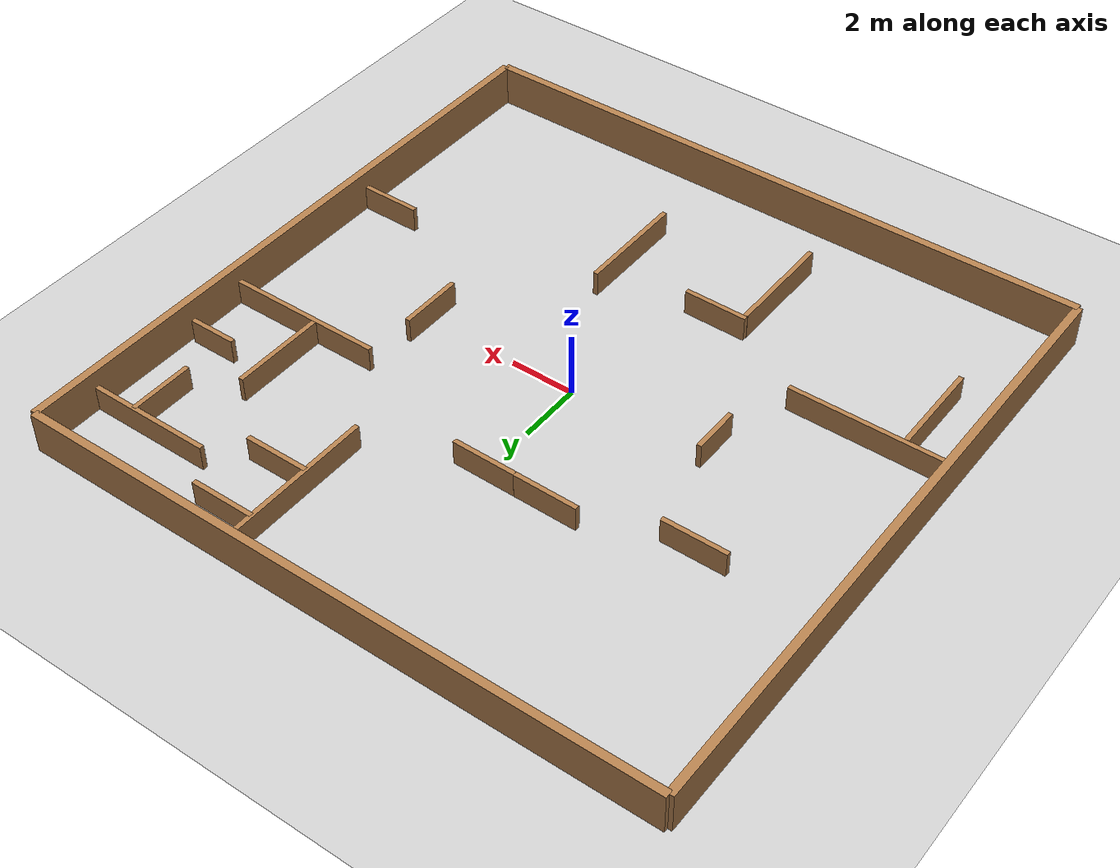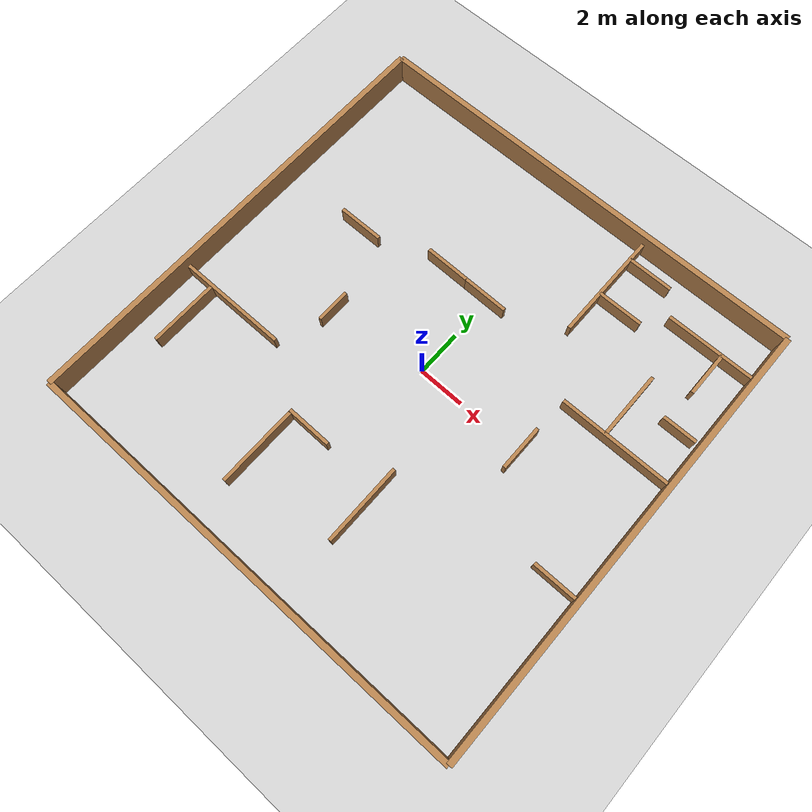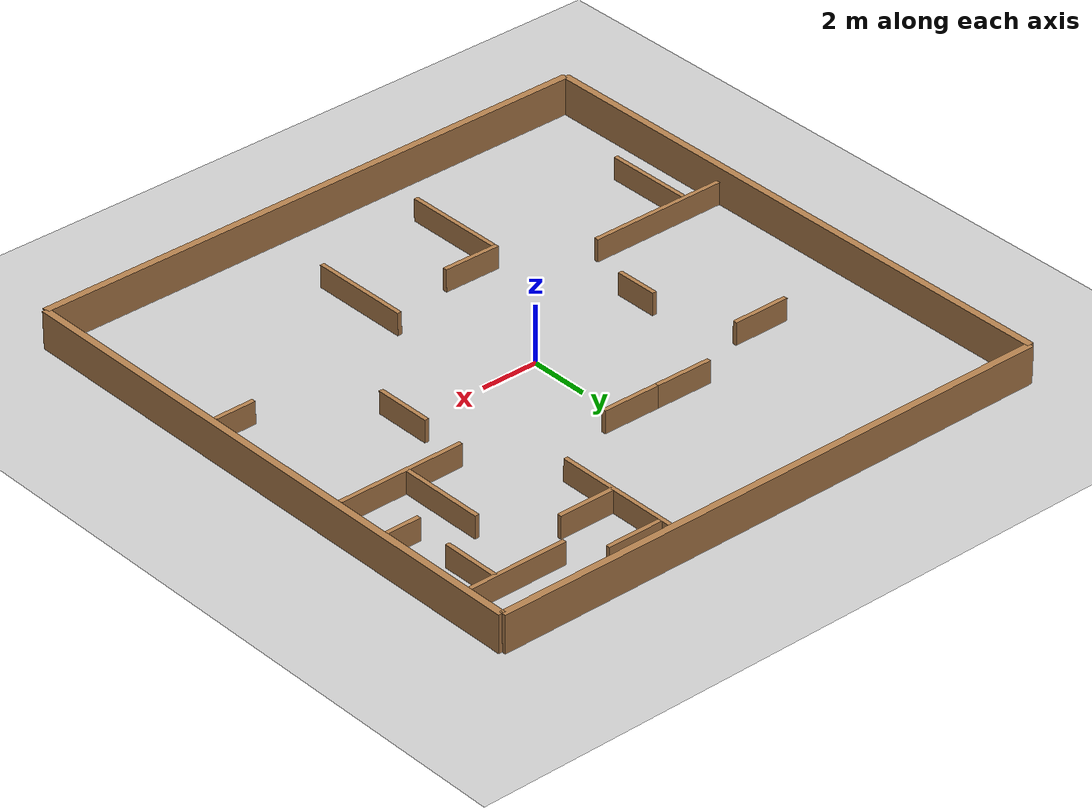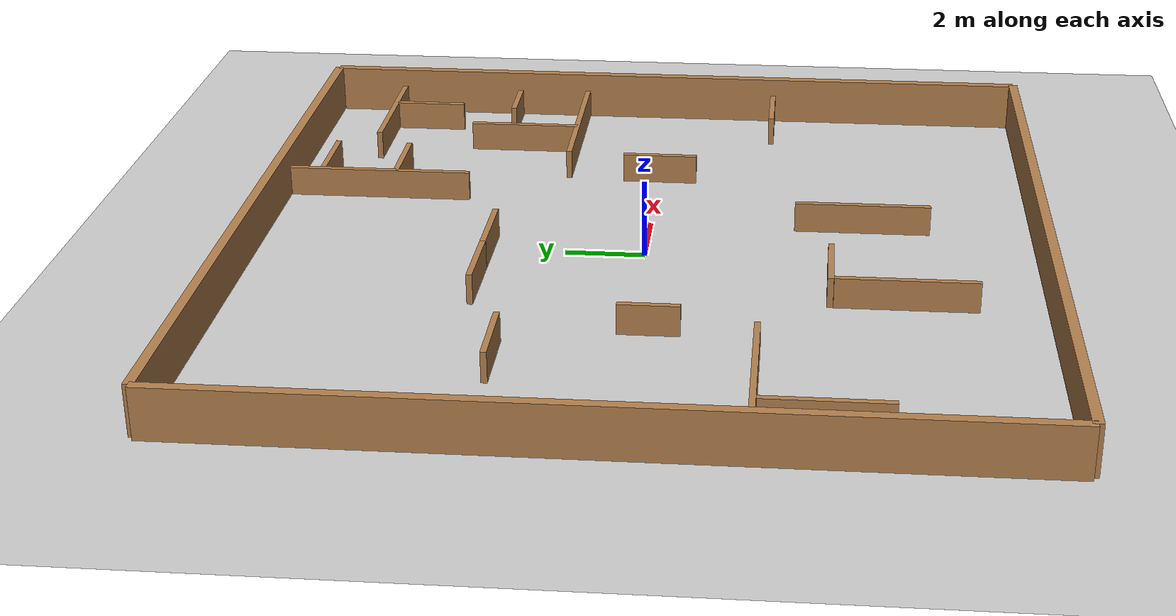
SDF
<sdf version="1.7">
 <world name="default">
  <plugin name="gazebo_ros_state" filename="libgazebo_ros_state.so">
   <ros><namespace>/test</namespace><argument>model_states:=model_states_demo</argument></ros>
   <update_rate>1.0</update_rate>
  </plugin>
  <model name="ground_plane">
   <static>1</static>
   <link name="link">
    <collision name="collision">
     <geometry><plane><normal>0 0 1</normal><size>100 100</size></plane></geometry>
     <surface>
      <contact><collide_bitmask>65535</collide_bitmask></contact>
      <friction><ode><mu>100</mu><mu2>50</mu2></ode></friction>
     </surface>
    </collision>
    <visual name="visual">
     <cast_shadows>0</cast_shadows>
     <geometry><plane><normal>0 0 1</normal><size>100 100</size></plane></geometry>
     <material>
      <script><uri>file://media/materials/scripts/gazebo.material</uri><name>Gazebo/Grey</name></script>
     </material>
    </visual>
   </link>
  </model>
  <light name="sun" type="directional">
   <pose>0 0 10 0 -0 0</pose>
   <diffuse>0.8 0.8 0.8 1</diffuse>
   <specular>0.2 0.2 0.2 1</specular>
   <attenuation>
    <range>1000</range>
    <constant>0.9</constant>
    <linear>0.01</linear>
    <quadratic>0.001</quadratic>
   </attenuation>
   <direction>-0.5 0.1 -0.9</direction>
   <spot><inner_angle>0</inner_angle><outer_angle>0</outer_angle><falloff>0</falloff></spot>
  </light>
  <scene><shadows>0</shadows><ambient>0.4 0.4 0.4 1</ambient><background>0.7 0.7 0.7 1</background></scene>
  <physics type="ode">
   <real_time_update_rate>1000</real_time_update_rate>
   <max_step_size>0.001</max_step_size>
   <real_time_factor>1</real_time_factor>
   <ode>
    <solver>
     <type>quick</type>
     <iters>150</iters>
     <precon_iters>0</precon_iters>
     <sor>1.4</sor>
     <use_dynamic_moi_rescaling>1</use_dynamic_moi_rescaling>
    </solver>
    <constraints>
     <cfm>1e-05</cfm>
     <erp>0.2</erp>
     <contact_max_correcting_vel>2000</contact_max_correcting_vel>
     <contact_surface_layer>0.01</contact_surface_layer>
    </constraints>
   </ode>
  </physics>
  <gravity>0 0 -9.8</gravity>
  <magnetic_field>6e-06 2.3e-05 -4.2e-05</magnetic_field>
  <atmosphere type="adiabatic"/>
  <spherical_coordinates>
   <surface_model>EARTH_WGS84</surface_model>
   <latitude_deg>0</latitude_deg>
   <longitude_deg>0</longitude_deg>
   <elevation>0</elevation>
   <heading_deg>0</heading_deg>
  </spherical_coordinates>
  <model name="room_square">
   <static>1</static>
   <link name="Wall_1">
    <collision name="Wall_1_Collision">
     <geometry><box><size>20 0.25 2</size></box></geometry>
     <pose>0 0 0.25 0 -0 0</pose>
    </collision>
    <visual name="Wall_1_Visual">
     <pose>0 0 0.25 0 -0 0</pose>
     <geometry><box><size>20 0.25 2</size></box></geometry>
     <material>
      <script><uri>file://media/materials/scripts/gazebo.material</uri><name>Gazebo/Wood</name></script>
      <ambient>1 1 1 1</ambient>
     </material>
    </visual>
    <pose>-10 0 0 0 -0 1.5708</pose>
   </link>
   <link name="Wall_2">
    <collision name="Wall_2_Collision">
     <geometry><box><size>20 0.25 2</size></box></geometry>
     <pose>0 0 0.25 0 -0 0</pose>
    </collision>
    <visual name="Wall_2_Visual">
     <pose>0 0 0.25 0 -0 0</pose>
     <geometry><box><size>20 0.25 2</size></box></geometry>
     <material>
      <script><uri>file://media/materials/scripts/gazebo.material</uri><name>Gazebo/Wood</name></script>
      <ambient>1 1 1 1</ambient>
     </material>
    </visual>
    <pose>0 10 0 0 -0 0</pose>
   </link>
   <link name="Wall_3">
    <collision name="Wall_3_Collision">
     <geometry><box><size>20 0.25 2</size></box></geometry>
     <pose>0 0 0.25 0 -0 0</pose>
    </collision>
    <visual name="Wall_3_Visual">
     <pose>0 0 0.25 0 -0 0</pose>
     <geometry><box><size>20 0.25 2</size></box></geometry>
     <material>
      <script><uri>file://media/materials/scripts/gazebo.material</uri><name>Gazebo/Wood</name></script>
      <ambient>1 1 1 1</ambient>
     </material>
    </visual>
    <pose>10 0 0 0 0 -1.5708</pose>
   </link>
   <link name="Wall_4">
    <collision name="Wall_4_Collision">
     <geometry><box><size>20 0.25 2</size></box></geometry>
     <pose>0 0 0.25 0 -0 0</pose>
    </collision>
    <visual name="Wall_4_Visual">
     <pose>0 0 0.25 0 -0 0</pose>
     <geometry><box><size>20 0.25 2</size></box></geometry>
     <material>
      <script><uri>file://media/materials/scripts/gazebo.material</uri><name>Gazebo/Wood</name></script>
      <ambient>1 1 1 1</ambient>
     </material>
    </visual>
    <pose>0 -10 0 0 -0 3.14159</pose>
   </link>
   <static>1</static>
  </model>
  <model name="inner_wall_1_1">
   <static>1</static>
   <link name="inner_wall_1_1">
    <collision name="inner_wall_1_1_collision">
     <geometry><box><size>5 0.15 1</size></box></geometry>
     <pose>0 0 0.25 0 -0 0</pose>
    </collision>
    <visual name="inner_wall_1_1_visual">
     <pose>0 0 0.25 0 -0 0</pose>
     <geometry><box><size>5 0.15 1</size></box></geometry>
     <material>
      <script><uri>file://media/materials/scripts/gazebo.material</uri><name>Gazebo/Wood</name></script>
      <ambient>1 1 1 1</ambient>
     </material>
    </visual>
    <pose>-7.5 -3 0 0 -0 0</pose>
   </link>
  </model>
  <model name="inner_wall_right_down_h">
   <pose>-0.54073 -0.07967 0 0 -0 0</pose>
   <static>1</static>
   <link name="inner_wall_right_down_h">
    <collision name="inner_wall_right_down_h_collision">
     <geometry><box><size>3 0.15 1</size></box></geometry>
     <pose>0 0 0.25 0 -0 0</pose>
    </collision>
    <visual name="inner_wall_right_down_h_visual">
     <pose>0 0 0.25 0 -0 0</pose>
     <geometry><box><size>3 0.15 1</size></box></geometry>
     <material>
      <script><uri>file://media/materials/scripts/gazebo.material</uri><name>Gazebo/Wood</name></script>
      <ambient>1 1 1 1</ambient>
     </material>
    </visual>
    <pose>-8 -4.5 0 0 0 -1.5708</pose>
   </link>
  </model>
  <model name="inner_wall_1_2">
   <static>1</static>
   <link name="inner_wall_1_2">
    <collision name="inner_wall_1_2_collision">
     <geometry><box><size>3.5 0.15 1</size></box></geometry>
     <pose>0 0 0.25 0 -0 0</pose>
    </collision>
    <visual name="inner_wall_1_2_visual">
     <pose>0 0 0.25 0 -0 0</pose>
     <geometry><box><size>3.5 0.15 1</size></box></geometry>
     <material>
      <script><uri>file://media/materials/scripts/gazebo.material</uri><name>Gazebo/Wood</name></script>
      <ambient>1 1 1 1</ambient>
     </material>
    </visual>
    <pose>-2.5 -6.5 0 0 0 -1.5708</pose>
   </link>
  </model>
  <model name="inner_wall_9">
   <static>1</static>
   <link name="inner_wall_9">
    <collision name="inner_wall_9_collision">
     <geometry><box><size>2 0.15 1</size></box></geometry>
     <pose>0 0 0.25 0 -0 0</pose>
    </collision>
    <visual name="inner_wall_9_visual">
     <pose>0 0 0.25 0 -0 0</pose>
     <geometry><box><size>2 0.15 1</size></box></geometry>
     <material>
      <script><uri>file://media/materials/scripts/gazebo.material</uri><name>Gazebo/Wood</name></script>
      <ambient>1 1 1 1</ambient>
     </material>
    </visual>
    <pose>9 -3 0 0 -0 0</pose>
   </link>
  </model>
  <model name="inner_wall_4">
   <static>1</static>
   <link name="inner_wall_4">
    <collision name="inner_wall_4_collision">
     <geometry><box><size>5 0.15 1</size></box></geometry>
     <pose>0 0 0.25 0 -0 0</pose>
    </collision>
    <visual name="inner_wall_4_visual">
     <pose>0 0 0.25 0 -0 0</pose>
     <geometry><box><size>5 0.15 1</size></box></geometry>
     <material>
      <script><uri>file://media/materials/scripts/gazebo.material</uri><name>Gazebo/Wood</name></script>
      <ambient>1 1 1 1</ambient>
     </material>
    </visual>
    <pose>3.3 7.5 0 0 0 -1.5708</pose>
   </link>
  </model>
  <model name="inner_wall_5">
   <static>1</static>
   <link name="inner_wall_5">
    <collision name="inner_wall_5_collision">
     <geometry><box><size>5 0.15 1</size></box></geometry>
     <pose>0 0 0.25 0 -0 0</pose>
    </collision>
    <visual name="inner_wall_5_visual">
     <pose>0 0 0.25 0 -0 0</pose>
     <geometry><box><size>5 0.15 1</size></box></geometry>
     <material>
      <script><uri>file://media/materials/scripts/gazebo.material</uri><name>Gazebo/Wood</name></script>
      <ambient>1 1 1 1</ambient>
     </material>
    </visual>
    <pose>7.5 2.5 0 0 -0 0</pose>
   </link>
  </model>
  <model name="inner_wall_6">
   <static>1</static>
   <link name="inner_wall_6">
    <collision name="inner_wall_6_collision">
     <geometry><box><size>1 0.15 1</size></box></geometry>
     <pose>0 0 0.25 0 -0 0</pose>
    </collision>
    <visual name="inner_wall_6_visual">
     <pose>0 0 0.25 0 -0 0</pose>
     <geometry><box><size>2 0.15 1</size></box></geometry>
     <material>
      <script><uri>file://media/materials/scripts/gazebo.material</uri><name>Gazebo/Wood</name></script>
      <ambient>1 1 1 1</ambient>
     </material>
    </visual>
    <pose>-6 3 0 0 -0 0</pose>
   </link>
  </model>
  <model name="inner_wall_7">
   <pose>3.97868 -3.01062 0 0 -0 0</pose>
   <static>1</static>
   <link name="inner_wall_7">
    <collision name="inner_wall_7_collision">
     <geometry><box><size>2 0.15 1</size></box></geometry>
     <pose>0 0 0.25 0 -0 0</pose>
    </collision>
    <visual name="inner_wall_7_visual">
     <pose>0 0 0.25 0 -0 0</pose>
     <geometry><box><size>2 0.15 1</size></box></geometry>
     <material>
      <script><uri>file://media/materials/scripts/gazebo.material</uri><name>Gazebo/Wood</name></script>
      <ambient>1 1 1 1</ambient>
     </material>
    </visual>
    <pose>0.978676 2.98938 0 0 0 -1.5708</pose>
   </link>
  </model>
  <model name="inner_wall_8">
   <pose>-0.31921 -0.45043 0 0 -0 0</pose>
   <static>1</static>
   <link name="inner_wall_8">
    <collision name="inner_wall_8_collision">
     <geometry><box><size>1.5 0.15 1</size></box></geometry>
     <pose>0 0 0.25 0 -0 0</pose>
    </collision>
    <visual name="inner_wall_8_visual">
     <pose>0 0 0.25 0 -0 0</pose>
     <geometry><box><size>1.5 0.15 1</size></box></geometry>
     <material>
      <script><uri>file://media/materials/scripts/gazebo.material</uri><name>Gazebo/Wood</name></script>
      <ambient>1 1 1 1</ambient>
     </material>
    </visual>
    <pose>-4 0 0 0 0 -1.5708</pose>
   </link>
  </model>
  <model name="inner_wall_11">
   <static>1</static>
   <link name="inner_wall_11">
    <collision name="inner_wall_11_collision">
     <geometry><box><size>3 0.15 1</size></box></geometry>
     <pose>0 0 0.25 0 -0 0</pose>
    </collision>
    <visual name="inner_wall_11_visual">
     <pose>0 0 0.25 0 -0 0</pose>
     <geometry><box><size>3 0.15 1</size></box></geometry>
     <material>
      <script><uri>file://media/materials/scripts/gazebo.material</uri><name>Gazebo/Wood</name></script>
      <ambient>1 1 1 1</ambient>
     </material>
    </visual>
    <pose>7 4 0 0 0 -1.5708</pose>
   </link>
  </model>
  <model name="inner_wall_12">
   <static>1</static>
   <link name="inner_wall_12">
    <collision name="inner_wall_12_collision">
     <geometry><box><size>4 0.15 1</size></box></geometry>
     <pose>0 0 0.25 0 -0 0</pose>
    </collision>
    <visual name="inner_wall_12_visual">
     <pose>0 0 0.25 0 -0 0</pose>
     <geometry><box><size>4 0.15 1</size></box></geometry>
     <material>
      <script><uri>file://media/materials/scripts/gazebo.material</uri><name>Gazebo/Wood</name></script>
      <ambient>1 1 1 1</ambient>
     </material>
    </visual>
    <pose>8 8 0 0 -0 0</pose>
   </link>
  </model>
  <model name="inner_wall_13">
   <static>1</static>
   <link name="inner_wall_13">
    <collision name="inner_wall_13_collision">
     <geometry><box><size>2 0.15 1</size></box></geometry>
     <pose>0 0 0.25 0 -0 0</pose>
    </collision>
    <visual name="inner_wall_13_visual">
     <pose>0 0 0.25 0 -0 0</pose>
     <geometry><box><size>2 0.15 1</size></box></geometry>
     <material>
      <script><uri>file://media/materials/scripts/gazebo.material</uri><name>Gazebo/Wood</name></script>
      <ambient>1 1 1 1</ambient>
     </material>
    </visual>
    <pose>4.3 9 0 0 -0 0</pose>
   </link>
  </model>
  <model name="inner_wall_14">
   <static>1</static>
   <link name="inner_wall_14">
    <collision name="inner_wall_14_collision">
     <geometry><box><size>1.5 0.15 1</size></box></geometry>
     <pose>0 0 0.25 0 -0 0</pose>
    </collision>
    <visual name="inner_wall_14_visual">
     <pose>0 0 0.25 0 -0 0</pose>
     <geometry><box><size>1.5 0.15 1</size></box></geometry>
     <material>
      <script><uri>file://media/materials/scripts/gazebo.material</uri><name>Gazebo/Wood</name></script>
      <ambient>1 1 1 1</ambient>
     </material>
    </visual>
    <pose>9 4.5 0 0 -0 0</pose>
   </link>
  </model>
  <model name="inner_wall_15">
   <static>1</static>
   <link name="inner_wall_15">
    <collision name="inner_wall_15_collision">
     <geometry><box><size>2 0.15 1</size></box></geometry>
     <pose>0 0 0.25 0 -0 0</pose>
    </collision>
    <visual name="inner_wall_15_visual">
     <pose>0 0 0.25 0 -0 0</pose>
     <geometry><box><size>2 0.15 1</size></box></geometry>
     <material>
      <script><uri>file://media/materials/scripts/gazebo.material</uri><name>Gazebo/Wood</name></script>
      <ambient>1 1 1 1</ambient>
     </material>
    </visual>
    <pose>8.5 7 0 0 0 -1.5708</pose>
   </link>
  </model>
  <model name="inner_wall_16">
   <static>1</static>
   <link name="inner_wall_16">
    <collision name="inner_wall_16_collision">
     <geometry><box><size>2 0.15 1</size></box></geometry>
     <pose>0 0 0.25 0 -0 0</pose>
    </collision>
    <visual name="inner_wall_16_visual">
     <pose>0 0 0.25 0 -0 0</pose>
     <geometry><box><size>2 0.15 1</size></box></geometry>
     <material>
      <script><uri>file://media/materials/scripts/gazebo.material</uri><name>Gazebo/Wood</name></script>
      <ambient>1 1 1 1</ambient>
     </material>
    </visual>
    <pose>4.3 7 0 0 -0 0</pose>
   </link>
  </model>
  <model name="inner_wall_7_clone">
   <static>1</static>
   <link name="inner_wall_7">
    <collision name="inner_wall_7_collision">
     <geometry><box><size>2 0.15 1</size></box></geometry>
     <pose>0 0 0.25 0 -0 0</pose>
    </collision>
    <visual name="inner_wall_7_visual">
     <pose>0 0 0.25 0 -0 0</pose>
     <geometry><box><size>2 0.15 1</size></box></geometry>
     <material>
      <script><uri>file://media/materials/scripts/gazebo.material</uri><name>Gazebo/Wood</name></script>
      <ambient>1 1 1 1</ambient>
     </material>
    </visual>
    <pose>-3 6 0 0 0 -1.5708</pose>
   </link>
   <pose>5.93455 6.85894 0 0 -0 1.55951</pose>
  </model>
  <model name="inner_wall_7_clone_clone">
   <static>1</static>
   <link name="inner_wall_7">
    <collision name="inner_wall_7_collision">
     <geometry><box><size>2 0.15 1</size></box></geometry>
     <pose>0 0 0.25 0 -0 0</pose>
    </collision>
    <visual name="inner_wall_7_visual">
     <pose>0 0 0.25 0 -0 0</pose>
     <geometry><box><size>2 0.15 1</size></box></geometry>
     <material>
      <script><uri>file://media/materials/scripts/gazebo.material</uri><name>Gazebo/Wood</name></script>
      <ambient>1 1 1 1</ambient>
     </material>
    </visual>
    <pose>-3 6 0 0 0 -1.5708</pose>
   </link>
   <pose>3.93302 6.88283 0 0 -0 1.55951</pose>
  </model>
  <model name="inner_wall_7_clone_clone_0">
   <static>1</static>
   <link name="inner_wall_7">
    <collision name="inner_wall_7_collision">
     <geometry><box><size>2 0.15 1</size></box></geometry>
     <pose>0 0 0.25 0 -0 0</pose>
    </collision>
    <visual name="inner_wall_7_visual">
     <pose>0 0 0.25 0 -0 0</pose>
     <geometry><box><size>2 0.15 1</size></box></geometry>
     <material>
      <script><uri>file://media/materials/scripts/gazebo.material</uri><name>Gazebo/Wood</name></script>
      <ambient>1 1 1 1</ambient>
     </material>
    </visual>
    <pose>-3 6 0 0 0 -1.5708</pose>
   </link>
   <pose>4.46177 -1.74832 0 0 -0 1.55951</pose>
  </model>
  <model name="inner_wall_1_2_clone">
   <static>1</static>
   <link name="inner_wall_1_2">
    <collision name="inner_wall_1_2_collision">
     <geometry><box><size>3.5 0.15 1</size></box></geometry>
     <pose>0 0 0.25 0 -0 0</pose>
    </collision>
    <visual name="inner_wall_1_2_visual">
     <pose>0 0 0.25 0 -0 0</pose>
     <geometry><box><size>3.5 0.15 1</size></box></geometry>
     <material>
      <script><uri>file://media/materials/scripts/gazebo.material</uri><name>Gazebo/Wood</name></script>
      <ambient>1 1 1 1</ambient>
     </material>
    </visual>
    <pose>-2.5 -6.5 0 0 0 -1.5708</pose>
   </link>
   <pose>-0.543095 -12.015667 0 0 0 -3.14</pose>
  </model>
 </world>
</sdf>
